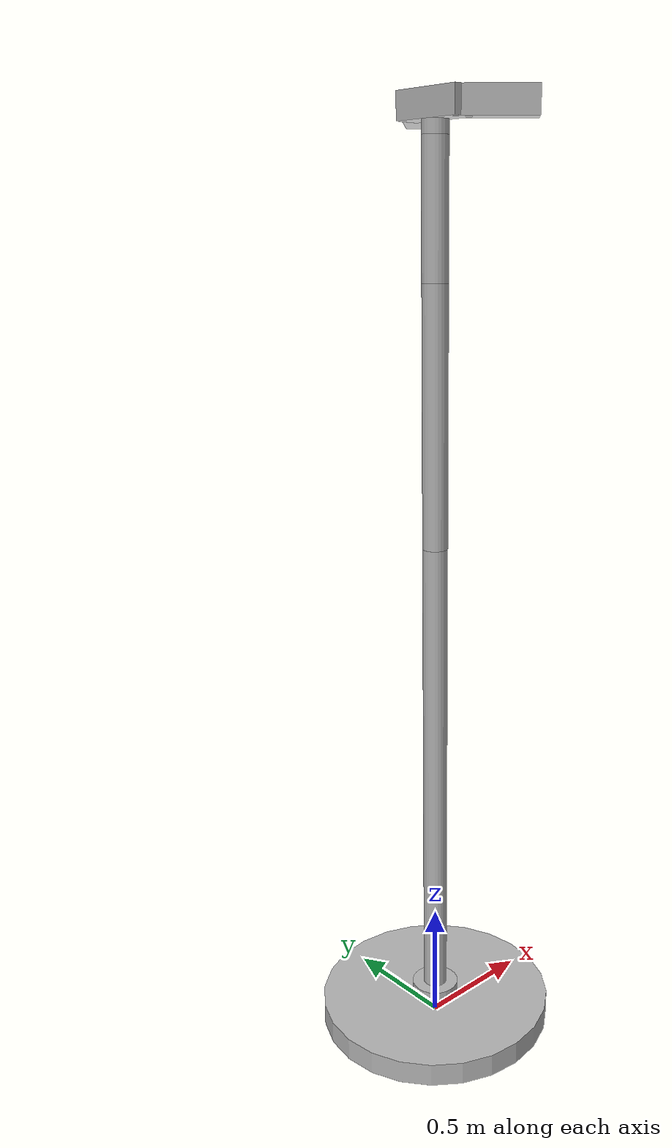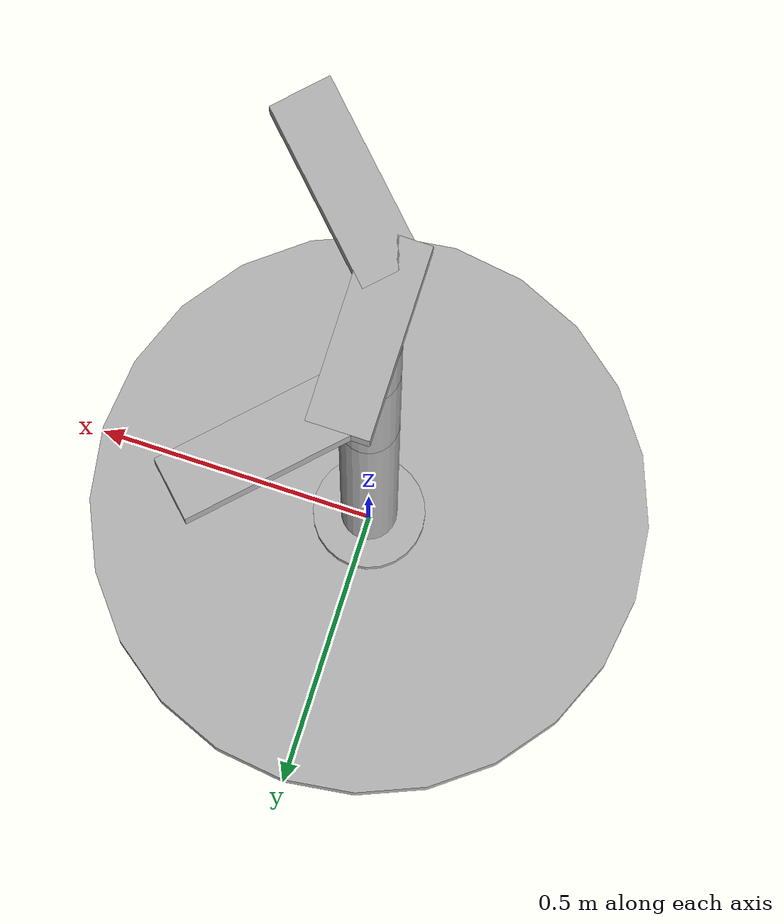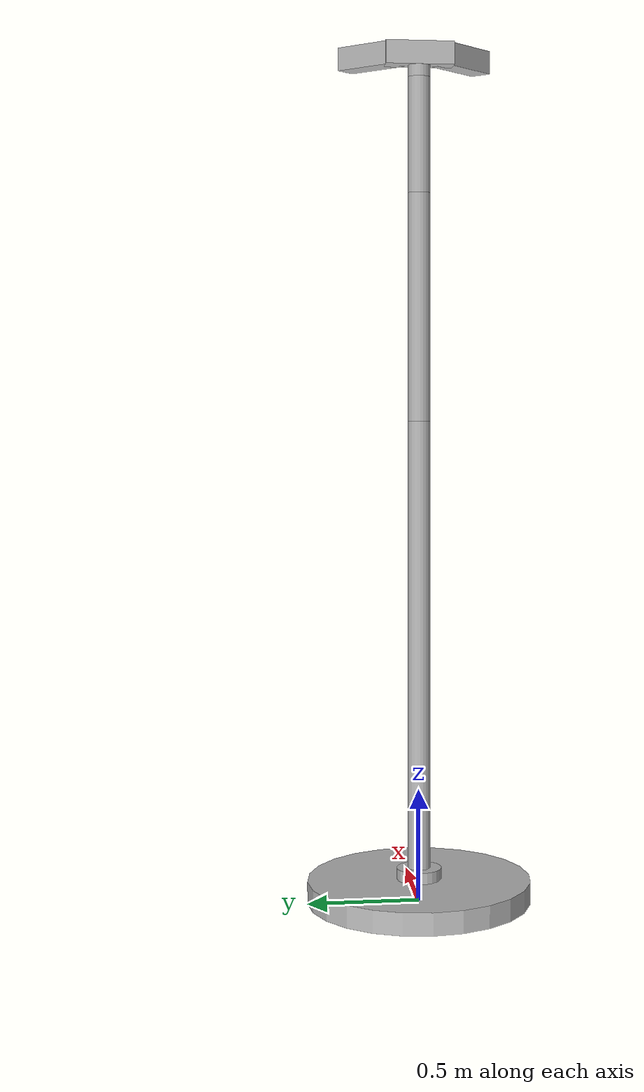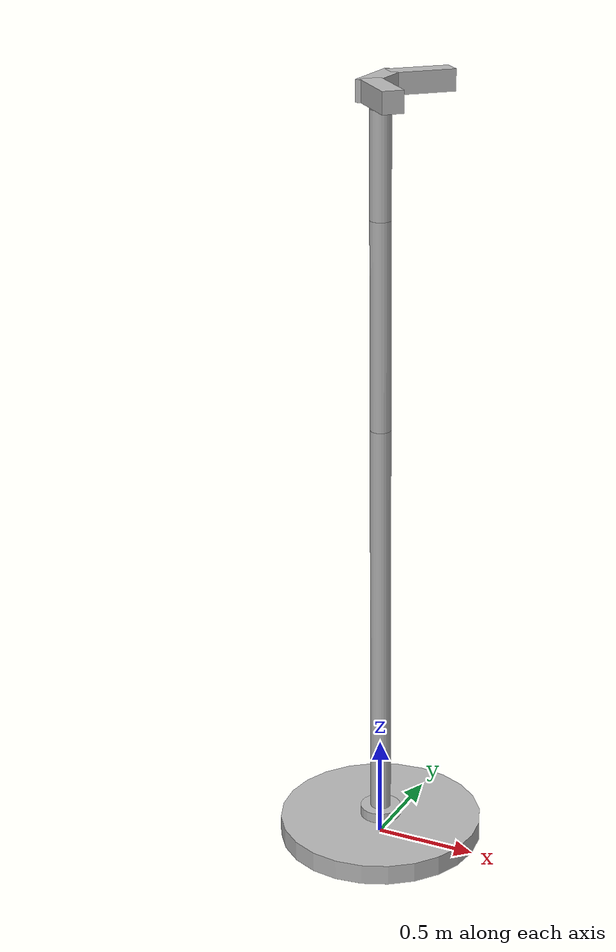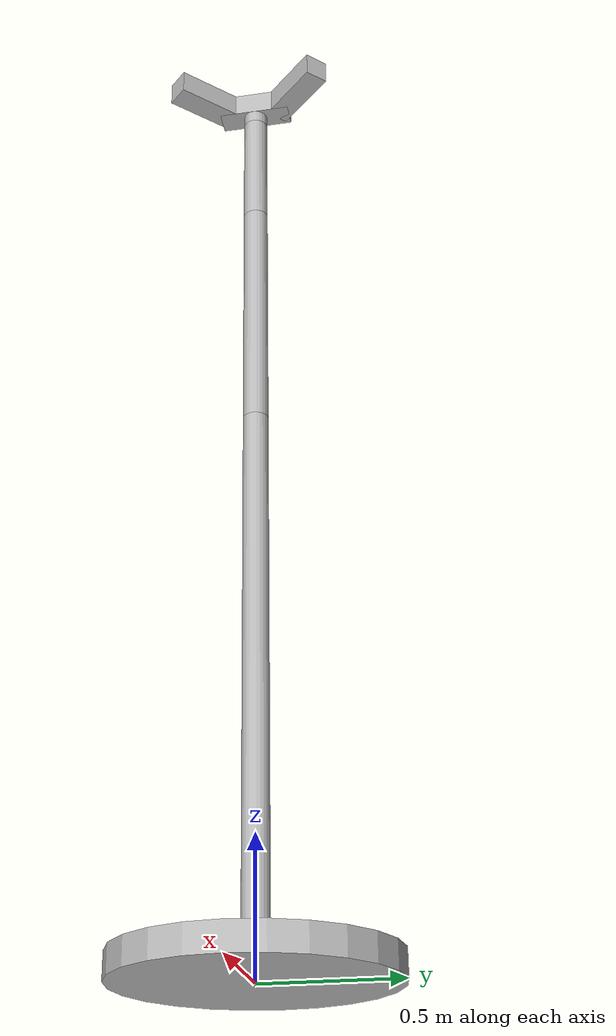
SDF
<?xml version='1.0'?>
<sdf version='1.4'>
  <model name="arm">
  <static>false</static>
  <link name="chassis">
    <pose>0 0 .05 0 0 0</pose>
       <mass>50</mass>
    <collision name='collision'>
            <geometry>
                <cylinder>
                  <radius>0.5</radius>
                  <length>0.1</length>
                </cylinder>
              </geometry>
            </collision>
            <visual name='visual'>
              <geometry>
                <cylinder>
                  <radius>0.5</radius>
                  <length>0.1</length>
                </cylinder>
              </geometry>
            </visual>
    </link>
    <link name="arm1">
    <gravity>0</gravity>
    <pose>0 0 0.125 0 0 0</pose>
     <collision name='collision'>
            <geometry>
                <cylinder>
                  <radius>0.1</radius>
                  <length>0.05</length>
                </cylinder>
              </geometry>
            </collision>
            <visual name='visual'>
              <geometry>
                <cylinder>
                  <radius>0.1</radius>
                  <length>0.05</length>
                </cylinder>
              </geometry>
            </visual>

    </link>
    <link name="arm2">
    <gravity>0</gravity>
    <pose>0 0 1.15 0 0 0</pose>
     <collision name='collision'>
            <geometry>
                <cylinder>
                  <radius>0.05</radius>
                  <length>2.0</length>
                </cylinder>
              </geometry>
            </collision>
            <visual name='visual'>
              <geometry>
                <cylinder>
                  <radius>0.05</radius>
                  <length>2.0</length>
                </cylinder>
              </geometry>
            </visual>

    </link>
    <link name="arm3">
    <gravity>0</gravity>
    <pose>0 0 2.65 0 0 0</pose>
    <inertial>
                <mass>0.25</mass>
            </inertial>
     <collision name='collision'>
            <geometry>
                <cylinder>
                  <radius>0.05</radius>
                  <length>1.0</length>
                </cylinder>
              </geometry>
            </collision>
            <visual name='visual'>
              <geometry>
                <cylinder>
                  <radius>0.05</radius>
                  <length>1.0</length>
                </cylinder>
              </geometry>
            </visual>

    </link>
    <link name="arm4">
    <gravity>0</gravity>
    <pose>0 0 3.4 0 0 0</pose>
      <inertial>
                <mass>.125</mass>
            </inertial>
     <collision name='collision'>
            <geometry>
                <cylinder>
                  <radius>0.05</radius>
                  <length>0.5</length>
                </cylinder>
              </geometry>
            </collision>
            <visual name='visual'>
              <geometry>
                <cylinder>
                  <radius>0.05</radius>
                  <length>0.5</length>
                </cylinder>
              </geometry>
            </visual>

    </link>
     <link name="arm5">
    <gravity>0</gravity>
    <pose>0 0 3.675 0 0 0</pose>
     <collision name='collision'>
            <geometry>
                <cylinder>
                  <radius>0.05</radius>
                  <length>0.05</length>
                </cylinder>
              </geometry>
            </collision>
            <visual name='visual'>
              <geometry>
                <cylinder>
                  <radius>0.05</radius>
                  <length>0.05</length>
                </cylinder>
              </geometry>
            </visual>

    </link>
     <link name="palm">
      <gravity>0</gravity>
            <pose>0.0 0.0 3.75 0 0 0</pose>
            <inertial>

                <mass>0.05</mass>
            </inertial>
            <collision name="collision">
                <geometry>
                    <box>
                        <size>0.1 0.3 0.1</size>
                    </box>
                </geometry>
            </collision>
            <visual name="visual">
                <geometry>
                    <box>
                        <size>0.1 0.3 0.1</size>
                    </box>
                </geometry>
                <material>
                    <script>Gazebo/Red</script>
                </material>
            </visual>
        </link>
        <link name="left_finger">
        <gravity>0</gravity>
            <pose>0.1 0.2 3.75 0 0 -0.78539</pose>
            <inertial>

                <mass>0.1</mass>
            </inertial>
            <collision name="collision">
                <geometry>
                    <box>
                        <size>0.1 0.3 0.1</size>
                    </box>
                </geometry>
                  <surface>
                    <friction>
                        <ode>
                            <mu>500</mu>
                            <mu2>500</mu2>
                            <slip1>0.0</slip1>
                            <slip2>0.0</slip2>
                        </ode>
                    </friction>
                </surface>
            </collision>

            <visual name="visual">
                <geometry>
                    <box>
                        <size>0.1 0.3 0.1</size>
                    </box>
                </geometry>

            </visual>
        </link>
        <link name="right_finger">
        <gravity>0</gravity>
            <pose>0.1 -0.2 3.75 0 0 .78539</pose>
            <inertial>

                <mass>0.05</mass>
            </inertial>
            <collision name="collision">
                <geometry>
                    <box>
                        <size>0.1 0.3 0.1</size>
                    </box>
                </geometry>
                <surface>
                    <friction>
                        <ode>
                            <mu>500</mu>
                            <mu2>500</mu2>
                            <slip1>0.0</slip1>
                            <slip2>0.0</slip2>
                        </ode>
                    </friction>
                </surface>
            </collision>
            <visual name="visual">
                <geometry>
                    <box>
                        <size>0.1 0.3 0.1</size>
                    </box>
                </geometry>
                <material>
                    <script>Gazebo/Green</script>
                </material>
            </visual>
        </link> -->
    <joint name="chassis_arm1_joint" type="revolute">
       <parent>chassis</parent>
       <child>arm1</child>
       <pose>0 0 -0.025 0 0</pose>
       <axis>
          <xyz> 0 0 1</xyz>
          <dynamics>
                    <damping>2.0</damping>
                    <friction>0.7</friction>
                </dynamics>
                <limit>
                    <effort>100</effort>
                    <velocity>1.0</velocity>
                </limit>
       </axis>
    </joint>
    <joint name="arm1_arm2_joint" type="revolute">
       <parent>arm1</parent>
       <child>arm2</child>
       <pose>0 0 -1 0 0 0</pose>
       <axis>
          <xyz> 1 0 0</xyz>
          <dynamics>
                    <damping>1.0</damping>
                    <friction>0.3</friction>
                </dynamics>
                <limit>
                    <lower>-1.0</lower>
                    <upper>1.0</upper>
                    <effort>100</effort>
                    <velocity>1.0</velocity>
                </limit>
       </axis>

    </joint>
    <joint name="arm2_arm3_joint" type="revolute">
       <parent>arm2</parent>
       <child>arm3</child>
       <pose>0 0 -0.5 0 0 0</pose>
       <axis>
          <xyz> 1 0 0</xyz>
             <dynamics>
                    <damping>1.0</damping>
                    <friction>0.3</friction>
                </dynamics>
                <limit>
                    <effort>100</effort>
                    <velocity>1.0</velocity>
                </limit>
       </axis>
    </joint>
    <joint name="arm3_arm4_joint" type="revolute">
       <parent>arm3</parent>
       <child>arm4</child>
       <pose>0 0 -0.25 0 0 0</pose>
       <axis>
          <xyz> 1 0 0  </xyz>
                <dynamics>
                    <damping>1.0</damping>
                    <friction>0.3</friction>
                </dynamics>
                <limit>
                    <effort>100</effort>
                    <velocity>1.0</velocity>
                </limit>
       </axis>

    </joint>
     <joint name="arm4_arm5_joint" type="revolute">
       <parent>arm4</parent>
       <child>arm5</child>
       <pose>0 0 -0.05 0 0 0</pose>
        <axis>
                <xyz> 0 0 1  </xyz>
                <dynamics>
                    <damping>1.0</damping>
                    <friction>0.3</friction>
                </dynamics>
                <limit>
                    <effort>100</effort>
                    <velocity>1.0</velocity>
                </limit>
            </axis>
    </joint>
     <joint name="arm5_arm6_joint" type="revolute">
       <parent>arm5</parent>
       <child>palm</child>
       <pose>0 0 -0.1 0 0 0</pose>
        <axis>
                <xyz> 1 0 0  </xyz>
                <dynamics>
                    <damping>1.0</damping>
                    <friction>0.3</friction>
                </dynamics>
                <limit>
                    <effort>100</effort>
                    <velocity>1.0</velocity>
                </limit>
            </axis>
    </joint>
     <joint name="arm6_arm7_joint" type="revolute">
            <pose>0 0 -0.15 0 0</pose>
            <child>left_finger</child>
            <parent>palm</parent>
            <xyz> 1 0 0</xyz>
                <dynamics>
                    <damping>1.0</damping>
                    <friction>0.3</friction>
                </dynamics>
                <limit>
                    <lower>-0.7</lower>
                    <upper>0.7</upper>
                    <effort>100</effort>
                    <velocity>1.0</velocity>
                </limit>
            </joint>
      <joint name="arm6_arm8_joint" type="revolute">
            <pose>0 0 -0.15 0 0</pose>
            <child>right_finger</child>
            <parent>palm</parent>
           <axis>
                <xyz> 1 0 0 </xyz>
                <dynamics>
                    <damping>1.0</damping>
                    <friction>0.3</friction>
                </dynamics>
                <limit>
                    <lower>-0.7</lower>
                    <upper>0.7</upper>
                    <effort>100</effort>
                    <velocity>1.0</velocity>
                </limit>
            </axis>
        </joint>
   <plugin name="arm_control" filename="libarm_gazebo.so" />
   <plugin name="arm_control" filename="libgripper_controller.so" />
  </model>
</sdf>
